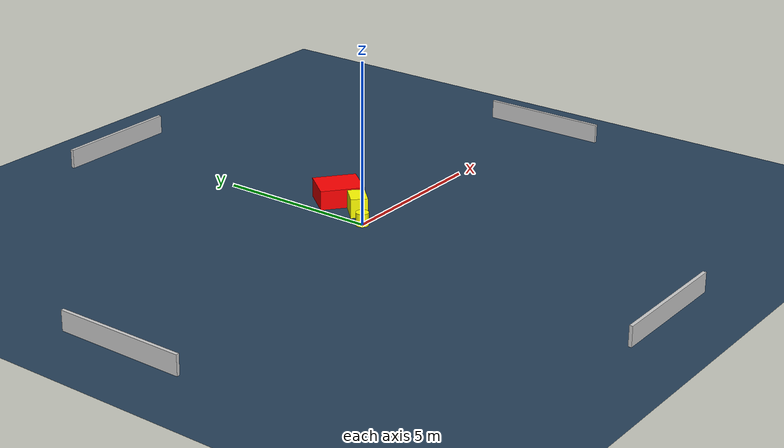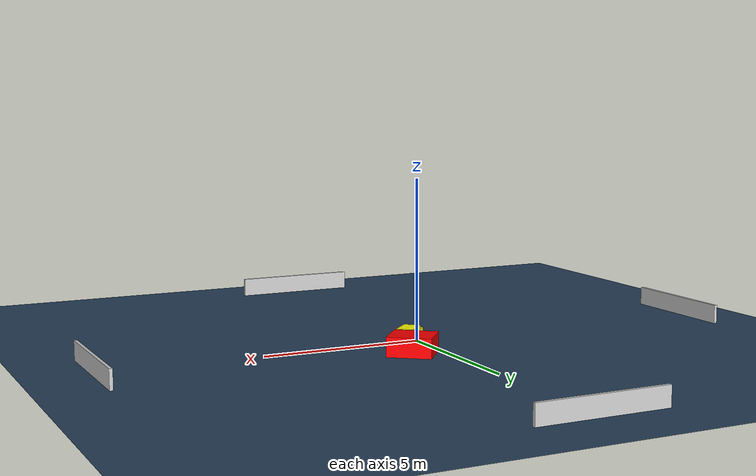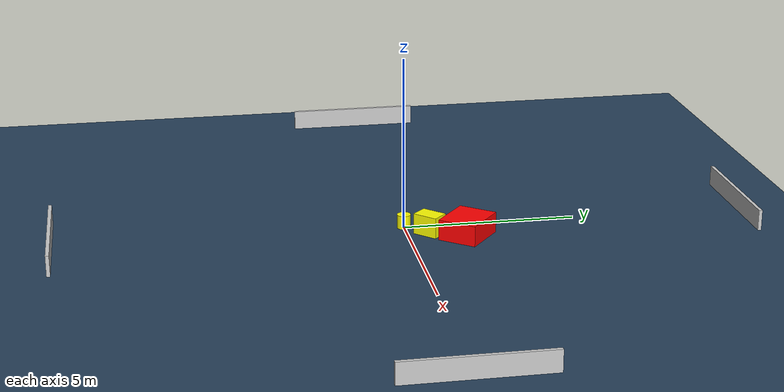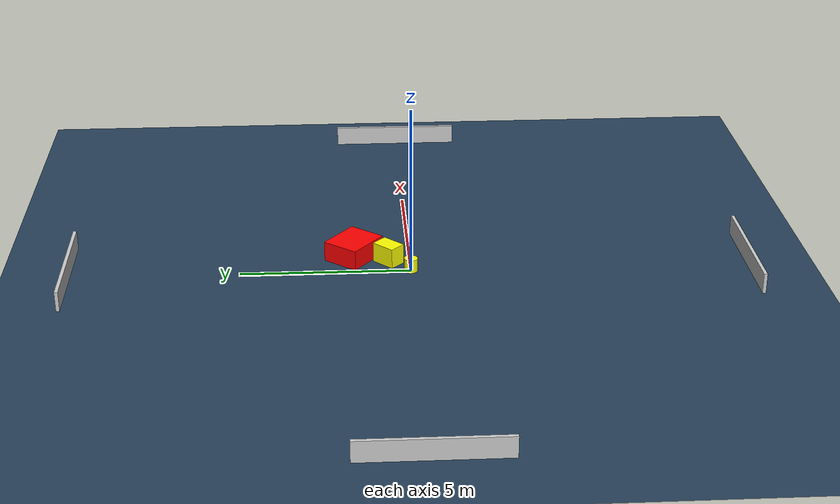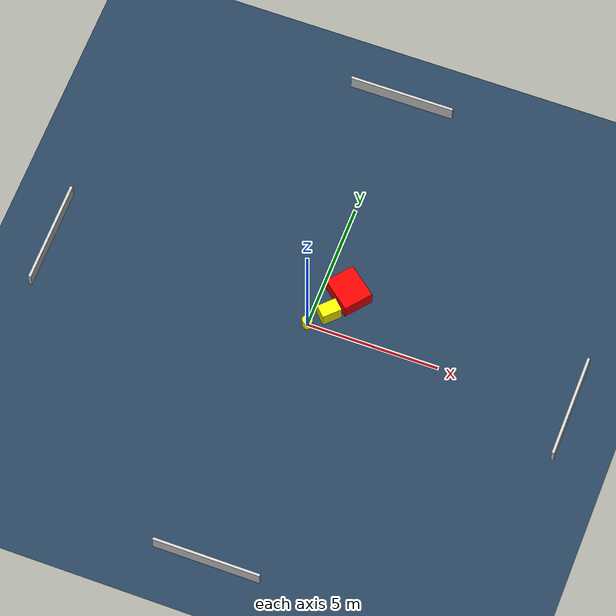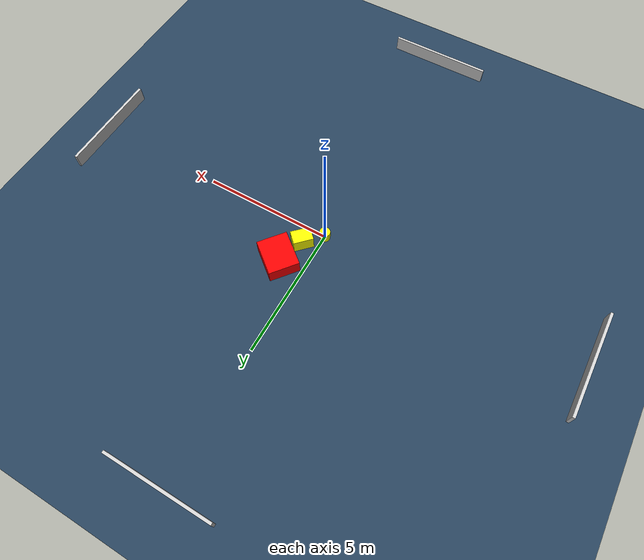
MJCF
<?xml version="1.0" ?>
<mujoco model="generated_environment">
  <option timestep="0.01" integrator="RK4" cone="elliptic"/>
  <default>
    <geom density="1"/>
  </default>
  <asset>
    <texture builtin="gradient" height="3072" name="skybox" rgb1="0.3 0.5 0.7" rgb2="0 0 0" type="skybox" width="512"/>
    <texture builtin="checker" height="300" name="groundplane" rgb1="0.2 0.3 0.4" rgb2="0.1 0.2 0.3" type="2d" width="300"/>
    <material name="groundplane" reflectance="0.2" texrepeat="5 5" texture="groundplane"/>
  </asset>
  <worldbody>
    <light dir="0 0 -1" directional="true" pos="0 0 1.5"/>
    <geom condim="3" friction="0.5 0.005 0.001" material="groundplane" name="floor" pos="0 0 0" size="0 0 0.05" type="plane"/>
    <body name="walls">
      <geom name="wall_1" condim="4" pos="-10.0 0.0 0.3" rgba="0.800000011920929 0.800000011920929 0.800000011920929 1.0" size="0.05 2.0 0.3" type="box"/>
      <geom name="wall_2" condim="4" pos="10.0 0.0 0.3" rgba="0.800000011920929 0.800000011920929 0.800000011920929 1.0" size="0.05 2.0 0.3" type="box"/>
      <geom name="wall_3" condim="4" pos="0.0 -10.0 0.3" rgba="0.800000011920929 0.800000011920929 0.800000011920929 1.0" size="2.0 0.05 0.3" type="box"/>
      <geom name="wall_4" condim="4" pos="0.0 10.0 0.3" rgba="0.800000011920929 0.800000011920929 0.800000011920929 1.0" size="2.0 0.05 0.3" type="box"/>
    </body>
    <body name="robot">
      <joint name="joint_x" type="slide" pos="0 0 0" axis="1 0 0"/>
      <joint name="joint_y" type="slide" pos="0 0 0" axis="0 1 0"/>
      <geom name="robot" type="cylinder" pos="0.0 0.0 0.2" size="0.2 0.2 0.0" mass="5.0" friction="1.0 0.005 0.0001" condim="4" rgba="1.0 1.0 0.0 1.0"/>
    </body>
    <body name="obstacle_1_movable">
      <geom name="obstacle_1_movable" condim="4" pos="0.5996680755020503 0.633828107084983 0.3" euler="0 0 135.34845017780052" friction="0.0 0.005 0.001" rgba="1.0 1.0 0.0 1.0" size="0.2593724687068797 0.37357752060172933 0.3" type="box" mass="0.1"/>
      <joint type="free"/>
    </body>
    <body name="obstacle_2_static">
      <geom name="obstacle_2_static" condim="4" pos="0.9806079990809394 1.655449188913065 0.3" euler="0 0 141.36221695341138" friction="0.0 0.005 0.001" rgba="1.0 0.0 0.0 1.0" size="0.6750424239168822 0.5709742091628047 0.3" type="box"/>
    </body>
  </worldbody>
  <actuator>
    <motor name="actuator_x" joint="joint_x" gear="1" ctrlrange="-1 1"/>
    <motor name="actuator_y" joint="joint_y" gear="1" ctrlrange="-1 1"/>
  </actuator>
</mujoco>
